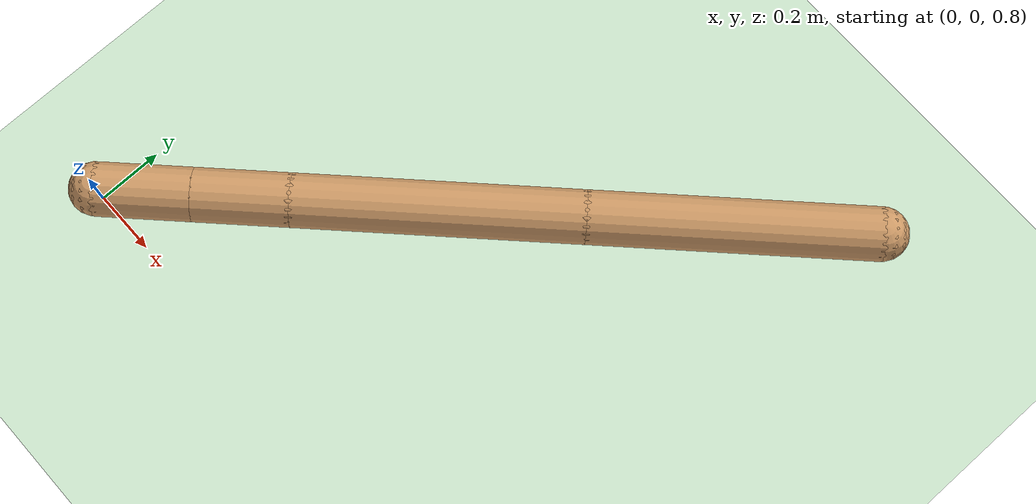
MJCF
<mujoco model="three_link_join">
  <compiler angle="degree" coordinate="local" inertiafromgeom="true"/>
  <option timestep="0.01" iterations="4" />

  <default>
    <joint armature="1" damping="1" limited="true"/>
    <geom contype="0" conaffinity="0" condim="3" density="5.0" friction="1 0.5 0.5" rgba="0.8 0.6 0.4 1"/>
  </default>
  <asset>
    <texture builtin="gradient" height="100" rgb1="1 1 1" rgb2="0 0 0" type="skybox" width="100"/>
    <texture builtin="flat" height="1278" mark="cross" markrgb="1 1 1" name="texgeom" random="0.01" rgb1="0.8 0.6 0.4" rgb2="0.8 0.6 0.4" type="cube" width="127"/>
    <texture builtin="checker" height="100" name="texplane" rgb1="0 0 0" rgb2="0.8 0.8 0.8" type="2d" width="100"/>
    <material name="MatPlane" reflectance="0.5" shininess="1" specular="1" texrepeat="60 60" texture="texplane"/>
    <material name="geom" texture="texgeom" texuniform="true"/>
  </asset>
  <worldbody>
    <light cutoff="100" diffuse="1 1 1" dir="-0 0 -1.3" directional="true" exponent="1" pos="0 0 1.3" specular=".1 .1 .1"/>
    <geom conaffinity="1" condim="3" material="MatPlane" name="floor" pos="0 0 0" rgba="0.8 0.9 0.8 1" size="40 40 40" type="plane"/>
    <geom material="MatPlane" name="floor_vis" pos="0 0 0" rgba="0.8 0.9 0.8 1" size="40 40 40" type="plane"/>

    <body name="torso" pos="0 0 0.9">
      <camera name="track" mode="trackcom" pos="0 -3 0.3" xyaxes="1 0 0 0 0 1"/>
      <geom name="torso_geom" contype="1"  pos="0 0 0" size="0.08" type="sphere"/>
      <joint armature="0" damping="0" limited="false" margin="0.01" name="root" pos="0 0 0" type="free"/>
      <body name="front_left_leg" pos="0 0 0">
        <geom fromto="0.0 0.0 0.0 0.2 0.2 0.0" name="aux_1_geom" size="0.08" type="capsule"/>
        <body name="aux_1" pos="0.2 0.2 0">
          <joint axis="0 0 1" name="hip_1" pos="0.0 0.0 0.0" range="-180 180" type="hinge"/>
          <geom fromto="0.0 0.0 0.0 0.2 0.2 0.0" contype="1" name="left_leg_geom" size="0.08" type="capsule"/>
          <geom name="left_leg_geom2" contype="1" pos="0.2 0.2 0" size="0.08" type="sphere" mass="0"/>
          <body pos="0.2 0.2 0">
            <joint axis="1 0 0" name="ankle_11" pos="0.0 0.0 0.0" range="-180 180"  type="hinge"/>
            <joint axis="0 1 0" name="ankle_12" pos="0.0 0.0 0.0" range="-180 180"  type="hinge"/>
            <geom fromto="0.0 0.0 0.0 0.6 0.6 0.0" contype="1" name="left_ankle_geom" size="0.08" type="capsule"/>
            <geom name="left_foot_geom" contype="1" pos="0.6 0.6 0" size="0.08" type="sphere" mass="0"/>
            <body pos="0.6 0.6 0">
              <joint axis="-1 1 0" name="ankle_2" pos="0.0 0.0 0.0" type="ball"/>
              <geom fromto="0.0 0.0 0.0 0.6 0.6 0.0" contype="1" name="left_ankle_geom2" size="0.08" type="capsule"/>
              <geom name="left_foot_geom2" contype="1" pos="0.6 0.6 0" size="0.08" type="sphere" mass="0"/>
            </body>

          </body>
        </body>
      </body>
    </body>
  </worldbody>
</mujoco>
